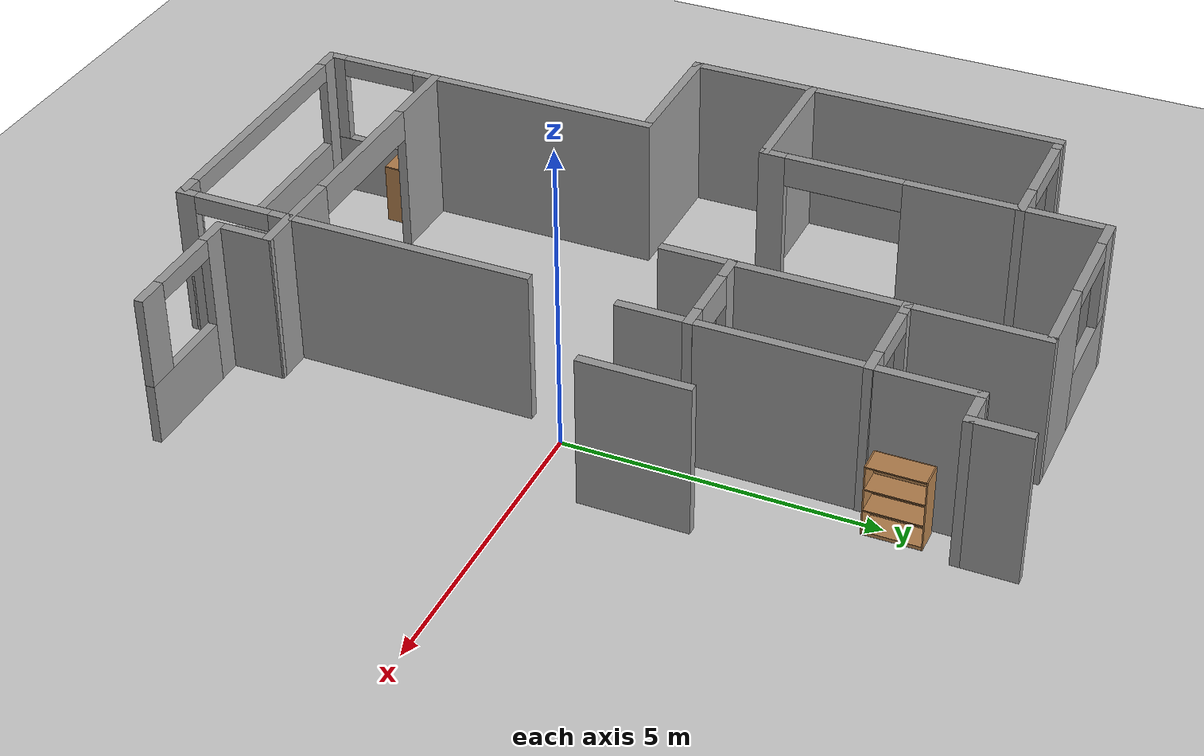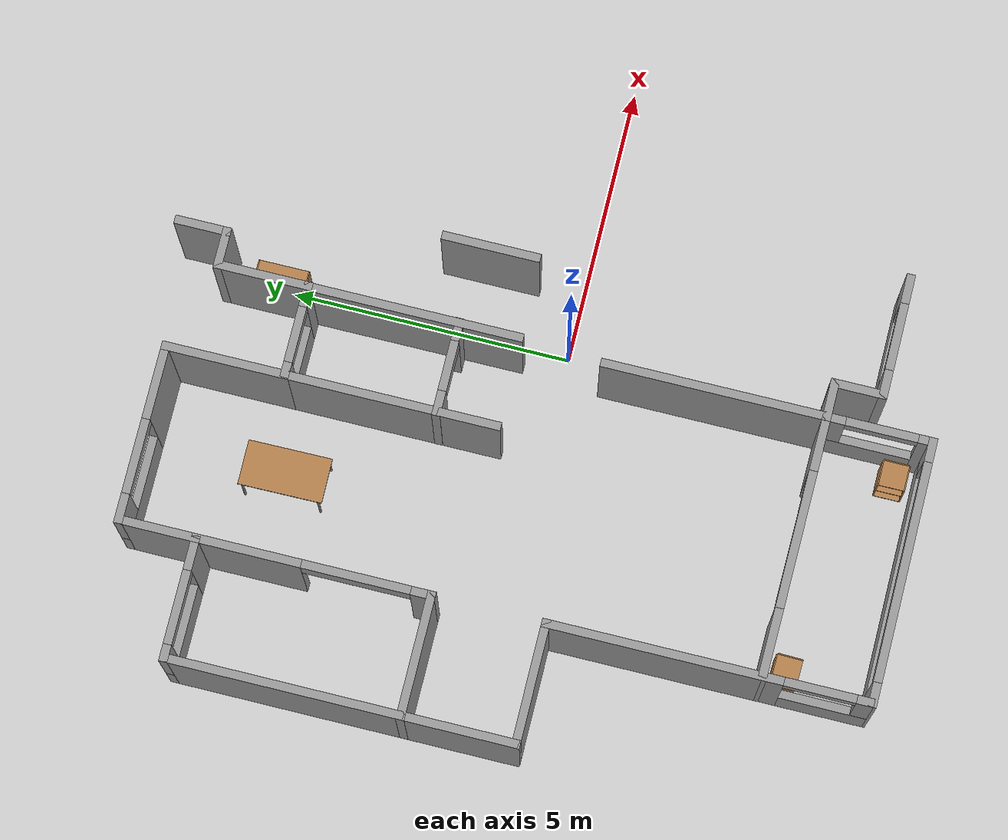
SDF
<sdf version="1.7">
 <world name="default">
  <model name="ground_plane">
   <static>1</static>
   <link name="link">
    <collision name="collision">
     <geometry><plane><normal>0 0 1</normal><size>100 100</size></plane></geometry>
     <surface>
      <contact><collide_bitmask>65535</collide_bitmask></contact>
      <friction><ode><mu>100</mu><mu2>50</mu2></ode></friction>
     </surface>
    </collision>
    <visual name="visual">
     <cast_shadows>0</cast_shadows>
     <geometry><plane><normal>0 0 1</normal><size>100 100</size></plane></geometry>
     <material>
      <script><uri>file://media/materials/scripts/gazebo.material</uri><name>Gazebo/Grey</name></script>
     </material>
    </visual>
   </link>
  </model>
  <model name="house_0818_yt160_1">
   <pose>0.015299 -0.157746 0 0 -0 0</pose>
   <link name="Wall_0">
    <pose>-2.74999 -6.3 0 0 -0 0</pose>
    <visual name="Wall_0_Visual_0">
     <pose>-2.15818 0 1.25 0 -0 0</pose>
     <geometry><box><size>0.433633 0.15 2.5</size></box></geometry>
     <material>
      <script><uri>file://media/materials/scripts/gazebo.material</uri><name>Gazebo/Grey</name></script>
      <ambient>1 1 1 1</ambient>
     </material>
     <meta><layer>0</layer></meta>
    </visual>
    <collision name="Wall_0_Collision_0">
     <geometry><box><size>0.433633 0.15 2.5</size></box></geometry>
     <pose>-2.15818 0 1.25 0 -0 0</pose>
    </collision>
    <visual name="Wall_0_Visual_1">
     <pose>0.216816 0 0.5 0 -0 0</pose>
     <geometry><box><size>4.31637 0.15 1</size></box></geometry>
     <material>
      <script><uri>file://media/materials/scripts/gazebo.material</uri><name>Gazebo/Grey</name></script>
      <ambient>1 1 1 1</ambient>
     </material>
     <meta><layer>0</layer></meta>
    </visual>
    <collision name="Wall_0_Collision_1">
     <geometry><box><size>4.31637 0.15 1</size></box></geometry>
     <pose>0.216816 0 0.5 0 -0 0</pose>
    </collision>
    <visual name="Wall_0_Visual_2">
     <pose>2.15777 0 1.75 0 -0 0</pose>
     <geometry><box><size>0.434453 0.15 1.5</size></box></geometry>
     <material>
      <script><uri>file://media/materials/scripts/gazebo.material</uri><name>Gazebo/Grey</name></script>
      <ambient>1 1 1 1</ambient>
     </material>
     <meta><layer>0</layer></meta>
    </visual>
    <collision name="Wall_0_Collision_2">
     <geometry><box><size>0.434453 0.15 1.5</size></box></geometry>
     <pose>2.15777 0 1.75 0 -0 0</pose>
    </collision>
    <visual name="Wall_0_Visual_3">
     <pose>-0.00041 0 2.35 0 -0 0</pose>
     <geometry><box><size>3.88191 0.15 0.3</size></box></geometry>
     <material>
      <script><uri>file://media/materials/scripts/gazebo.material</uri><name>Gazebo/Grey</name></script>
      <ambient>1 1 1 1</ambient>
     </material>
     <meta><layer>0</layer></meta>
    </visual>
    <collision name="Wall_0_Collision_3">
     <geometry><box><size>3.88191 0.15 0.3</size></box></geometry>
     <pose>-0.00041 0 2.35 0 -0 0</pose>
    </collision>
   </link>
   <link name="Wall_1">
    <pose>-0.45 -5.3749 0 0 -0 1.57081</pose>
    <visual name="Wall_1_Visual_0">
     <pose>-0.838302 0 1.25 0 -0 0</pose>
     <geometry><box><size>0.323396 0.15 2.5</size></box></geometry>
     <material>
      <script><uri>file://media/materials/scripts/gazebo.material</uri><name>Gazebo/Grey</name></script>
      <ambient>1 1 1 1</ambient>
     </material>
     <meta><layer>0</layer></meta>
    </visual>
    <collision name="Wall_1_Collision_0">
     <geometry><box><size>0.323396 0.15 2.5</size></box></geometry>
     <pose>-0.838302 0 1.25 0 -0 0</pose>
    </collision>
    <visual name="Wall_1_Visual_1">
     <pose>0.161698 0 0.5 0 -0 0</pose>
     <geometry><box><size>1.6766 0.15 1</size></box></geometry>
     <material>
      <script><uri>file://media/materials/scripts/gazebo.material</uri><name>Gazebo/Grey</name></script>
      <ambient>1 1 1 1</ambient>
     </material>
     <meta><layer>0</layer></meta>
    </visual>
    <collision name="Wall_1_Collision_1">
     <geometry><box><size>1.6766 0.15 1</size></box></geometry>
     <pose>0.161698 0 0.5 0 -0 0</pose>
    </collision>
    <visual name="Wall_1_Visual_2">
     <pose>0.796698 0 1.75 0 -0 0</pose>
     <geometry><box><size>0.406604 0.15 1.5</size></box></geometry>
     <material>
      <script><uri>file://media/materials/scripts/gazebo.material</uri><name>Gazebo/Grey</name></script>
      <ambient>1 1 1 1</ambient>
     </material>
     <meta><layer>0</layer></meta>
    </visual>
    <collision name="Wall_1_Collision_2">
     <geometry><box><size>0.406604 0.15 1.5</size></box></geometry>
     <pose>0.796698 0 1.75 0 -0 0</pose>
    </collision>
    <visual name="Wall_1_Visual_3">
     <pose>-0.041604 0 2.35 0 -0 0</pose>
     <geometry><box><size>1.27 0.15 0.3</size></box></geometry>
     <material>
      <script><uri>file://media/materials/scripts/gazebo.material</uri><name>Gazebo/Grey</name></script>
      <ambient>1 1 1 1</ambient>
     </material>
     <meta><layer>0</layer></meta>
    </visual>
    <collision name="Wall_1_Collision_3">
     <geometry><box><size>1.27 0.15 0.3</size></box></geometry>
     <pose>-0.041604 0 2.35 0 -0 0</pose>
    </collision>
   </link>
   <link name="Wall_2">
    <collision name="Wall_2_Collision">
     <geometry><box><size>0.75 0.15 2.5</size></box></geometry>
     <pose>0 0 1.25 0 -0 0</pose>
    </collision>
    <visual name="Wall_2_Visual">
     <pose>0 0 1.25 0 -0 0</pose>
     <geometry><box><size>0.75 0.15 2.5</size></box></geometry>
     <material>
      <script><uri>file://media/materials/scripts/gazebo.material</uri><name>Gazebo/Grey</name></script>
      <ambient>1 1 1 1</ambient>
     </material>
     <meta><layer>0</layer></meta>
    </visual>
    <pose>-0.15 -4.4499 0 0 -0 -0.000342</pose>
   </link>
   <link name="Wall_26">
    <collision name="Wall_26_Collision">
     <geometry><box><size>1 0.15 2.5</size></box></geometry>
     <pose>0 0 1.25 0 -0 0</pose>
    </collision>
    <visual name="Wall_26_Visual">
     <pose>0 0 1.25 0 -0 0</pose>
     <geometry><box><size>1 0.15 2.5</size></box></geometry>
     <material>
      <script><uri>file://media/materials/scripts/gazebo.material</uri><name>Gazebo/Grey</name></script>
      <ambient>1 1 1 1</ambient>
     </material>
     <meta><layer>0</layer></meta>
    </visual>
    <pose>0.250013 6.725 0 0 -0 -1.5708</pose>
   </link>
   <link name="Wall_27">
    <collision name="Wall_27_Collision">
     <geometry><box><size>0.75 0.15 2.5</size></box></geometry>
     <pose>0 0 1.25 0 -0 0</pose>
    </collision>
    <visual name="Wall_27_Visual">
     <pose>0 0 1.25 0 -0 0</pose>
     <geometry><box><size>0.75 0.15 2.5</size></box></geometry>
     <material>
      <script><uri>file://media/materials/scripts/gazebo.material</uri><name>Gazebo/Grey</name></script>
      <ambient>1 1 1 1</ambient>
     </material>
     <meta><layer>0</layer></meta>
    </visual>
    <pose>-0.049987 6.3 0 0 -0 3.14159</pose>
   </link>
   <link name="Wall_28">
    <collision name="Wall_28_Collision">
     <geometry><box><size>1.75 0.15 2.5</size></box></geometry>
     <pose>0 0 1.25 0 -0 0</pose>
    </collision>
    <visual name="Wall_28_Visual">
     <pose>0 0 1.25 0 -0 0</pose>
     <geometry><box><size>1.75 0.15 2.5</size></box></geometry>
     <material>
      <script><uri>file://media/materials/scripts/gazebo.material</uri><name>Gazebo/Grey</name></script>
      <ambient>1 1 1 1</ambient>
     </material>
     <meta><layer>0</layer></meta>
    </visual>
    <pose>-0.349987 5.5 0 0 -0 -1.5708</pose>
   </link>
   <link name="Wall_29">
    <pose>-1.15 4.7001 0 0 -0 3.14146</pose>
    <visual name="Wall_29_Visual_0">
     <pose>-0.650791 0 1.25 0 -0 0</pose>
     <geometry><box><size>0.448418 0.15 2.5</size></box></geometry>
     <material>
      <script><uri>file://media/materials/scripts/gazebo.material</uri><name>Gazebo/Grey</name></script>
      <ambient>1 1 1 1</ambient>
     </material>
     <meta><layer>0</layer></meta>
    </visual>
    <collision name="Wall_29_Collision_0">
     <geometry><box><size>0.448418 0.15 2.5</size></box></geometry>
     <pose>-0.650791 0 1.25 0 -0 0</pose>
    </collision>
    <visual name="Wall_29_Visual_1">
     <pose>0.224209 0 0.5 0 -0 0</pose>
     <geometry><box><size>1.30158 0.15 1</size></box></geometry>
     <material>
      <script><uri>file://media/materials/scripts/gazebo.material</uri><name>Gazebo/Grey</name></script>
      <ambient>1 1 1 1</ambient>
     </material>
     <meta><layer>0</layer></meta>
    </visual>
    <collision name="Wall_29_Collision_1">
     <geometry><box><size>1.30158 0.15 1</size></box></geometry>
     <pose>0.224209 0 0.5 0 -0 0</pose>
    </collision>
    <visual name="Wall_29_Visual_2">
     <pose>0.723209 0 1.75 0 -0 0</pose>
     <geometry><box><size>0.303582 0.15 1.5</size></box></geometry>
     <material>
      <script><uri>file://media/materials/scripts/gazebo.material</uri><name>Gazebo/Grey</name></script>
      <ambient>1 1 1 1</ambient>
     </material>
     <meta><layer>0</layer></meta>
    </visual>
    <collision name="Wall_29_Collision_2">
     <geometry><box><size>0.303582 0.15 1.5</size></box></geometry>
     <pose>0.723209 0 1.75 0 -0 0</pose>
    </collision>
    <visual name="Wall_29_Visual_3">
     <pose>0.072418 0 2.35 0 -0 0</pose>
     <geometry><box><size>0.998 0.15 0.3</size></box></geometry>
     <material>
      <script><uri>file://media/materials/scripts/gazebo.material</uri><name>Gazebo/Grey</name></script>
      <ambient>1 1 1 1</ambient>
     </material>
     <meta><layer>0</layer></meta>
    </visual>
    <collision name="Wall_29_Collision_3">
     <geometry><box><size>0.998 0.15 0.3</size></box></geometry>
     <pose>0.072418 0 2.35 0 -0 0</pose>
    </collision>
   </link>
   <link name="Wall_3">
    <collision name="Wall_3_Collision">
     <geometry><box><size>1 0.15 2.5</size></box></geometry>
     <pose>0 0 1.25 0 -0 0</pose>
    </collision>
    <visual name="Wall_3_Visual">
     <pose>0 0 1.25 0 -0 0</pose>
     <geometry><box><size>1 0.15 2.5</size></box></geometry>
     <material>
      <script><uri>file://media/materials/scripts/gazebo.material</uri><name>Gazebo/Grey</name></script>
      <ambient>1 1 1 1</ambient>
     </material>
     <meta><layer>0</layer></meta>
    </visual>
    <pose>0.150013 -4.875 0 0 -0 -1.5708</pose>
   </link>
   <link name="Wall_30">
    <collision name="Wall_30_Collision">
     <geometry><box><size>2.25 0.15 2.5</size></box></geometry>
     <pose>0 0 1.25 0 -0 0</pose>
    </collision>
    <visual name="Wall_30_Visual">
     <pose>0 0 1.25 0 -0 0</pose>
     <geometry><box><size>2.25 0.15 2.5</size></box></geometry>
     <material>
      <script><uri>file://media/materials/scripts/gazebo.material</uri><name>Gazebo/Grey</name></script>
      <ambient>1 1 1 1</ambient>
     </material>
     <meta><layer>0</layer></meta>
    </visual>
    <pose>-1.95 5.7501 0 0 -0 1.57078</pose>
   </link>
   <link name="Wall_31">
    <pose>-3.49999 6.8 0 0 -0 3.14159</pose>
    <visual name="Wall_31_Visual_0">
     <pose>-0.931268 0 1.25 0 -0 0</pose>
     <geometry><box><size>1.38746 0.15 2.5</size></box></geometry>
     <material>
      <script><uri>file://media/materials/scripts/gazebo.material</uri><name>Gazebo/Grey</name></script>
      <ambient>1 1 1 1</ambient>
     </material>
     <meta><layer>0</layer></meta>
    </visual>
    <collision name="Wall_31_Collision_0">
     <geometry><box><size>1.38746 0.15 2.5</size></box></geometry>
     <pose>-0.931268 0 1.25 0 -0 0</pose>
    </collision>
    <visual name="Wall_31_Visual_1">
     <pose>0.693732 0 0.5 0 -0 0</pose>
     <geometry><box><size>1.86254 0.15 1</size></box></geometry>
     <material>
      <script><uri>file://media/materials/scripts/gazebo.material</uri><name>Gazebo/Grey</name></script>
      <ambient>1 1 1 1</ambient>
     </material>
     <meta><layer>0</layer></meta>
    </visual>
    <collision name="Wall_31_Collision_1">
     <geometry><box><size>1.86254 0.15 1</size></box></geometry>
     <pose>0.693732 0 0.5 0 -0 0</pose>
    </collision>
    <visual name="Wall_31_Visual_2">
     <pose>1.35823 0 1.75 0 -0 0</pose>
     <geometry><box><size>0.533535 0.15 1.5</size></box></geometry>
     <material>
      <script><uri>file://media/materials/scripts/gazebo.material</uri><name>Gazebo/Grey</name></script>
      <ambient>1 1 1 1</ambient>
     </material>
     <meta><layer>0</layer></meta>
    </visual>
    <collision name="Wall_31_Collision_2">
     <geometry><box><size>0.533535 0.15 1.5</size></box></geometry>
     <pose>1.35823 0 1.75 0 -0 0</pose>
    </collision>
    <visual name="Wall_31_Visual_3">
     <pose>0.426965 0 2.35 0 -0 0</pose>
     <geometry><box><size>1.329 0.15 0.3</size></box></geometry>
     <material>
      <script><uri>file://media/materials/scripts/gazebo.material</uri><name>Gazebo/Grey</name></script>
      <ambient>1 1 1 1</ambient>
     </material>
     <meta><layer>0</layer></meta>
    </visual>
    <collision name="Wall_31_Collision_3">
     <geometry><box><size>1.329 0.15 0.3</size></box></geometry>
     <pose>0.426965 0 2.35 0 -0 0</pose>
    </collision>
   </link>
   <link name="Wall_32">
    <collision name="Wall_32_Collision">
     <geometry><box><size>1.5 0.15 2.5</size></box></geometry>
     <pose>0 0 1.25 0 -0 0</pose>
    </collision>
    <visual name="Wall_32_Visual">
     <pose>0 0 1.25 0 -0 0</pose>
     <geometry><box><size>1.5 0.15 2.5</size></box></geometry>
     <material>
      <script><uri>file://media/materials/scripts/gazebo.material</uri><name>Gazebo/Grey</name></script>
      <ambient>1 1 1 1</ambient>
     </material>
     <meta><layer>0</layer></meta>
    </visual>
    <pose>-5.05 6.1251 0 0 -0 -1.57082</pose>
   </link>
   <link name="Wall_33">
    <pose>-6.1 5.4501 0 0 -0 -3.14149</pose>
    <visual name="Wall_33_Visual_0">
     <pose>-0.80389 0 1.25 0 -0 0</pose>
     <geometry><box><size>0.642221 0.15 2.5</size></box></geometry>
     <material>
      <script><uri>file://media/materials/scripts/gazebo.material</uri><name>Gazebo/Grey</name></script>
      <ambient>1 1 1 1</ambient>
     </material>
     <meta><layer>0</layer></meta>
    </visual>
    <collision name="Wall_33_Collision_0">
     <geometry><box><size>0.642221 0.15 2.5</size></box></geometry>
     <pose>-0.80389 0 1.25 0 -0 0</pose>
    </collision>
    <visual name="Wall_33_Visual_1">
     <pose>0.32111 0 0.5 0 -0 0</pose>
     <geometry><box><size>1.60778 0.15 1</size></box></geometry>
     <material>
      <script><uri>file://media/materials/scripts/gazebo.material</uri><name>Gazebo/Grey</name></script>
      <ambient>1 1 1 1</ambient>
     </material>
     <meta><layer>0</layer></meta>
    </visual>
    <collision name="Wall_33_Collision_1">
     <geometry><box><size>1.60778 0.15 1</size></box></geometry>
     <pose>0.32111 0 0.5 0 -0 0</pose>
    </collision>
    <visual name="Wall_33_Visual_2">
     <pose>0.97211 0 1.75 0 -0 0</pose>
     <geometry><box><size>0.305779 0.15 1.5</size></box></geometry>
     <material>
      <script><uri>file://media/materials/scripts/gazebo.material</uri><name>Gazebo/Grey</name></script>
      <ambient>1 1 1 1</ambient>
     </material>
     <meta><layer>0</layer></meta>
    </visual>
    <collision name="Wall_33_Collision_2">
     <geometry><box><size>0.305779 0.15 1.5</size></box></geometry>
     <pose>0.97211 0 1.75 0 -0 0</pose>
    </collision>
    <visual name="Wall_33_Visual_3">
     <pose>0.168221 0 2.35 0 -0 0</pose>
     <geometry><box><size>1.302 0.15 0.3</size></box></geometry>
     <material>
      <script><uri>file://media/materials/scripts/gazebo.material</uri><name>Gazebo/Grey</name></script>
      <ambient>1 1 1 1</ambient>
     </material>
     <meta><layer>0</layer></meta>
    </visual>
    <collision name="Wall_33_Collision_3">
     <geometry><box><size>1.302 0.15 0.3</size></box></geometry>
     <pose>0.168221 0 2.35 0 -0 0</pose>
    </collision>
   </link>
   <link name="Wall_34">
    <collision name="Wall_34_Collision">
     <geometry><box><size>6.25 0.15 2.5</size></box></geometry>
     <pose>0 0 1.25 0 -0 0</pose>
    </collision>
    <visual name="Wall_34_Visual">
     <pose>0 0 1.25 0 -0 0</pose>
     <geometry><box><size>6.25 0.15 2.5</size></box></geometry>
     <material>
      <script><uri>file://media/materials/scripts/gazebo.material</uri><name>Gazebo/Grey</name></script>
      <ambient>1 1 1 1</ambient>
     </material>
     <meta><layer>0</layer></meta>
    </visual>
    <pose>-7.14999 2.4 0 0 -0 -1.5708</pose>
   </link>
   <link name="Wall_35">
    <collision name="Wall_35_Collision">
     <geometry><box><size>2.25 0.15 2.5</size></box></geometry>
     <pose>0 0 1.25 0 -0 0</pose>
    </collision>
    <visual name="Wall_35_Visual">
     <pose>0 0 1.25 0 -0 0</pose>
     <geometry><box><size>2.25 0.15 2.5</size></box></geometry>
     <material>
      <script><uri>file://media/materials/scripts/gazebo.material</uri><name>Gazebo/Grey</name></script>
      <ambient>1 1 1 1</ambient>
     </material>
     <meta><layer>0</layer></meta>
    </visual>
    <pose>-6.09999 -0.65 0 0 -0 0</pose>
   </link>
   <link name="Wall_36">
    <pose>-5.04999 -3.45 0 0 -0 -1.5708</pose>
    <visual name="Wall_36_Visual_0">
     <pose>-0.775854 0 1.25 0 -0 0</pose>
     <geometry><box><size>4.19829 0.15 2.5</size></box></geometry>
     <material>
      <script><uri>file://media/materials/scripts/gazebo.material</uri><name>Gazebo/Grey</name></script>
      <ambient>1 1 1 1</ambient>
     </material>
     <meta><layer>0</layer></meta>
    </visual>
    <collision name="Wall_36_Collision_0">
     <geometry><box><size>4.19829 0.15 2.5</size></box></geometry>
     <pose>-0.775854 0 1.25 0 -0 0</pose>
    </collision>
    <visual name="Wall_36_Visual_1">
     <pose>2.09915 0 0.5 0 -0 0</pose>
     <geometry><box><size>1.55171 0.15 1</size></box></geometry>
     <material>
      <script><uri>file://media/materials/scripts/gazebo.material</uri><name>Gazebo/Grey</name></script>
      <ambient>1 1 1 1</ambient>
     </material>
     <meta><layer>0</layer></meta>
    </visual>
    <collision name="Wall_36_Collision_1">
     <geometry><box><size>1.55171 0.15 1</size></box></geometry>
     <pose>2.09915 0 0.5 0 -0 0</pose>
    </collision>
    <visual name="Wall_36_Visual_2">
     <pose>2.72715 0 1.75 0 -0 0</pose>
     <geometry><box><size>0.295708 0.15 1.5</size></box></geometry>
     <material>
      <script><uri>file://media/materials/scripts/gazebo.material</uri><name>Gazebo/Grey</name></script>
      <ambient>1 1 1 1</ambient>
     </material>
     <meta><layer>0</layer></meta>
    </visual>
    <collision name="Wall_36_Collision_2">
     <geometry><box><size>0.295708 0.15 1.5</size></box></geometry>
     <pose>2.72715 0 1.75 0 -0 0</pose>
    </collision>
    <visual name="Wall_36_Visual_3">
     <pose>1.95129 0 2.35 0 -0 0</pose>
     <geometry><box><size>1.256 0.15 0.3</size></box></geometry>
     <material>
      <script><uri>file://media/materials/scripts/gazebo.material</uri><name>Gazebo/Grey</name></script>
      <ambient>1 1 1 1</ambient>
     </material>
     <meta><layer>0</layer></meta>
    </visual>
    <collision name="Wall_36_Collision_3">
     <geometry><box><size>1.256 0.15 0.3</size></box></geometry>
     <pose>1.95129 0 2.35 0 -0 0</pose>
    </collision>
   </link>
   <link name="Wall_38">
    <pose>-2.75001 -4.4253 0 0 -0 -0.010652</pose>
    <visual name="Wall_38_Visual_0">
     <pose>-1.74086 0 1.25 0 -0 0</pose>
     <geometry><box><size>1.26858 0.15 2.5</size></box></geometry>
     <material>
      <script><uri>file://media/materials/scripts/gazebo.material</uri><name>Gazebo/Grey</name></script>
      <ambient>1 1 1 1</ambient>
     </material>
     <meta><layer>0</layer></meta>
    </visual>
    <collision name="Wall_38_Collision_0">
     <geometry><box><size>1.26858 0.15 2.5</size></box></geometry>
     <pose>-1.74086 0 1.25 0 -0 0</pose>
    </collision>
    <visual name="Wall_38_Visual_1">
     <pose>1.85196 0 1.25 0 -0 0</pose>
     <geometry><box><size>1.04636 0.15 2.5</size></box></geometry>
     <material>
      <script><uri>file://media/materials/scripts/gazebo.material</uri><name>Gazebo/Grey</name></script>
      <ambient>1 1 1 1</ambient>
     </material>
     <meta><layer>0</layer></meta>
    </visual>
    <collision name="Wall_38_Collision_1">
     <geometry><box><size>1.04636 0.15 2.5</size></box></geometry>
     <pose>1.85196 0 1.25 0 -0 0</pose>
    </collision>
    <visual name="Wall_38_Visual_2">
     <pose>0.111105 0 2.25 0 -0 0</pose>
     <geometry><box><size>2.43535 0.15 0.5</size></box></geometry>
     <material>
      <script><uri>file://media/materials/scripts/gazebo.material</uri><name>Gazebo/Grey</name></script>
      <ambient>1 1 1 1</ambient>
     </material>
     <meta><layer>0</layer></meta>
    </visual>
    <collision name="Wall_38_Collision_2">
     <geometry><box><size>2.43535 0.15 0.5</size></box></geometry>
     <pose>0.111105 0 2.25 0 -0 0</pose>
    </collision>
   </link>
   <link name="Wall_40">
    <collision name="Wall_40_Collision">
     <geometry><box><size>4.04023 0.15 2.5</size></box></geometry>
     <pose>0 0 1.25 0 -0 0</pose>
    </collision>
    <visual name="Wall_40_Visual">
     <pose>0 0 1.25 0 -0 0</pose>
     <geometry><box><size>4.04023 0.15 2.5</size></box></geometry>
     <material>
      <script><uri>file://media/materials/scripts/gazebo.material</uri><name>Gazebo/Grey</name></script>
      <ambient>1 1 1 1</ambient>
     </material>
     <meta><layer>0</layer></meta>
    </visual>
    <pose>-0.450014 -2.5048 0 0 -0 1.5708</pose>
   </link>
   <link name="Wall_56">
    <collision name="Wall_56_Collision">
     <geometry><box><size>3.881 0.15 2.5</size></box></geometry>
     <pose>0 0 1.25 0 -0 0</pose>
    </collision>
    <visual name="Wall_56_Visual">
     <pose>0 0 1.25 0 -0 0</pose>
     <geometry><box><size>3.881 0.15 2.5</size></box></geometry>
     <material>
      <script><uri>file://media/materials/scripts/gazebo.material</uri><name>Gazebo/Grey</name></script>
      <ambient>1 1 1 1</ambient>
     </material>
     <meta><layer>0</layer></meta>
    </visual>
    <pose>-0.359014 2.83471 0 0 -0 1.5708</pose>
   </link>
   <link name="Wall_6">
    <pose>1.20001 -5.3 0 0 -0 0</pose>
    <visual name="Wall_6_Visual_0">
     <pose>-0.864374 0 1.25 0 -0 0</pose>
     <geometry><box><size>0.521252 0.15 2.5</size></box></geometry>
     <material>
      <script><uri>file://media/materials/scripts/gazebo.material</uri><name>Gazebo/Grey</name></script>
      <ambient>1 1 1 1</ambient>
     </material>
     <meta><layer>0</layer></meta>
    </visual>
    <collision name="Wall_6_Collision_0">
     <geometry><box><size>0.521252 0.15 2.5</size></box></geometry>
     <pose>-0.864374 0 1.25 0 -0 0</pose>
    </collision>
    <visual name="Wall_6_Visual_1">
     <pose>0.260626 0 0.5 0 -0 0</pose>
     <geometry><box><size>1.72875 0.15 1</size></box></geometry>
     <material>
      <script><uri>file://media/materials/scripts/gazebo.material</uri><name>Gazebo/Grey</name></script>
      <ambient>1 1 1 1</ambient>
     </material>
     <meta><layer>0</layer></meta>
    </visual>
    <collision name="Wall_6_Collision_1">
     <geometry><box><size>1.72875 0.15 1</size></box></geometry>
     <pose>0.260626 0 0.5 0 -0 0</pose>
    </collision>
    <visual name="Wall_6_Visual_2">
     <pose>0.860626 0 1.75 0 -0 0</pose>
     <geometry><box><size>0.528748 0.15 1.5</size></box></geometry>
     <material>
      <script><uri>file://media/materials/scripts/gazebo.material</uri><name>Gazebo/Grey</name></script>
      <ambient>1 1 1 1</ambient>
     </material>
     <meta><layer>0</layer></meta>
    </visual>
    <collision name="Wall_6_Collision_2">
     <geometry><box><size>0.528748 0.15 1.5</size></box></geometry>
     <pose>0.860626 0 1.75 0 -0 0</pose>
    </collision>
    <visual name="Wall_6_Visual_3">
     <pose>-0.003748 0 2.35 0 -0 0</pose>
     <geometry><box><size>1.2 0.15 0.3</size></box></geometry>
     <material>
      <script><uri>file://media/materials/scripts/gazebo.material</uri><name>Gazebo/Grey</name></script>
      <ambient>1 1 1 1</ambient>
     </material>
     <meta><layer>0</layer></meta>
    </visual>
    <collision name="Wall_6_Collision_3">
     <geometry><box><size>1.2 0.15 0.3</size></box></geometry>
     <pose>-0.003748 0 2.35 0 -0 0</pose>
    </collision>
   </link>
   <link name="Wall_61">
    <collision name="Wall_61_Collision">
     <geometry><box><size>1.75 0.15 2.5</size></box></geometry>
     <pose>0 0 1.25 0 -0 0</pose>
    </collision>
    <visual name="Wall_61_Visual">
     <pose>0 0 1.25 0 -0 0</pose>
     <geometry><box><size>1.75 0.15 2.5</size></box></geometry>
     <material>
      <script><uri>file://media/materials/scripts/gazebo.material</uri><name>Gazebo/Grey</name></script>
      <ambient>1 1 1 1</ambient>
     </material>
     <meta><layer>0</layer></meta>
    </visual>
    <pose>1.07493 1.81914 0 0 -0 1.57072</pose>
   </link>
   <link name="Wall_64">
    <collision name="Wall_64_Collision">
     <geometry><box><size>2.25 0.15 2.5</size></box></geometry>
     <pose>0 0 1.25 0 -0 0</pose>
    </collision>
    <visual name="Wall_64_Visual">
     <pose>0 0 1.25 0 -0 0</pose>
     <geometry><box><size>2.25 0.15 2.5</size></box></geometry>
     <material>
      <script><uri>file://media/materials/scripts/gazebo.material</uri><name>Gazebo/Grey</name></script>
      <ambient>1 1 1 1</ambient>
     </material>
     <meta><layer>0</layer></meta>
    </visual>
    <pose>-6.10001 1.3412 0 0 -0 0</pose>
   </link>
   <link name="Wall_65">
    <pose>-5.05001 3.3957 0 0 -0 1.5708</pose>
    <visual name="Wall_65_Visual_0">
     <pose>-1.91504 0 1.25 0 -0 0</pose>
     <geometry><box><size>0.429095 0.15 2.5</size></box></geometry>
     <material>
      <script><uri>file://media/materials/scripts/gazebo.material</uri><name>Gazebo/Grey</name></script>
      <ambient>1 1 1 1</ambient>
     </material>
     <meta><layer>0</layer></meta>
    </visual>
    <collision name="Wall_65_Collision_0">
     <geometry><box><size>0.429095 0.15 2.5</size></box></geometry>
     <pose>-1.91504 0 1.25 0 -0 0</pose>
    </collision>
    <visual name="Wall_65_Visual_1">
     <pose>1.16995 0 1.25 0 -0 0</pose>
     <geometry><box><size>1.91927 0.15 2.5</size></box></geometry>
     <material>
      <script><uri>file://media/materials/scripts/gazebo.material</uri><name>Gazebo/Grey</name></script>
      <ambient>1 1 1 1</ambient>
     </material>
     <meta><layer>0</layer></meta>
    </visual>
    <collision name="Wall_65_Collision_1">
     <geometry><box><size>1.91927 0.15 2.5</size></box></geometry>
     <pose>1.16995 0 1.25 0 -0 0</pose>
    </collision>
    <visual name="Wall_65_Visual_2">
     <pose>-0.745089 0 2.25 0 -0 0</pose>
     <geometry><box><size>1.91081 0.15 0.5</size></box></geometry>
     <material>
      <script><uri>file://media/materials/scripts/gazebo.material</uri><name>Gazebo/Grey</name></script>
      <ambient>1 1 1 1</ambient>
     </material>
     <meta><layer>0</layer></meta>
    </visual>
    <collision name="Wall_65_Collision_2">
     <geometry><box><size>1.91081 0.15 0.5</size></box></geometry>
     <pose>-0.745089 0 2.25 0 -0 0</pose>
    </collision>
   </link>
   <link name="Wall_67">
    <collision name="Wall_67_Collision">
     <geometry><box><size>3.881 0.15 2.5</size></box></geometry>
     <pose>0 0 1.25 0 -0 0</pose>
    </collision>
    <visual name="Wall_67_Visual">
     <pose>0 0 1.25 0 -0 0</pose>
     <geometry><box><size>3.881 0.15 2.5</size></box></geometry>
     <material>
      <script><uri>file://media/materials/scripts/gazebo.material</uri><name>Gazebo/Grey</name></script>
      <ambient>1 1 1 1</ambient>
     </material>
     <meta><layer>0</layer></meta>
    </visual>
    <pose>-1.95001 2.83471 0 0 -0 -1.5708</pose>
   </link>
   <link name="Wall_69">
    <pose>-1.15319 2.02474 0 0 -0 3.14159</pose>
    <visual name="Wall_69_Visual_0">
     <pose>-0.674133 0 1.25 0 -0 0</pose>
     <geometry><box><size>0.401733 0.15 2.5</size></box></geometry>
     <material>
      <script><uri>file://media/materials/scripts/gazebo.material</uri><name>Gazebo/Grey</name></script>
      <ambient>1 1 1 1</ambient>
     </material>
     <meta><layer>0</layer></meta>
    </visual>
    <collision name="Wall_69_Collision_0">
     <geometry><box><size>0.401733 0.15 2.5</size></box></geometry>
     <pose>-0.674133 0 1.25 0 -0 0</pose>
    </collision>
    <visual name="Wall_69_Visual_1">
     <pose>0.650867 0 1.25 0 -0 0</pose>
     <geometry><box><size>0.448267 0.15 2.5</size></box></geometry>
     <material>
      <script><uri>file://media/materials/scripts/gazebo.material</uri><name>Gazebo/Grey</name></script>
      <ambient>1 1 1 1</ambient>
     </material>
     <meta><layer>0</layer></meta>
    </visual>
    <collision name="Wall_69_Collision_1">
     <geometry><box><size>0.448267 0.15 2.5</size></box></geometry>
     <pose>0.650867 0 1.25 0 -0 0</pose>
    </collision>
    <visual name="Wall_69_Visual_2">
     <pose>-0.023267 0 2.25 0 -0 0</pose>
     <geometry><box><size>0.9 0.15 0.5</size></box></geometry>
     <material>
      <script><uri>file://media/materials/scripts/gazebo.material</uri><name>Gazebo/Grey</name></script>
      <ambient>1 1 1 1</ambient>
     </material>
     <meta><layer>0</layer></meta>
    </visual>
    <collision name="Wall_69_Collision_2">
     <geometry><box><size>0.9 0.15 0.5</size></box></geometry>
     <pose>-0.023267 0 2.25 0 -0 0</pose>
    </collision>
   </link>
   <static>1</static>
  </model>
  <model name="Table_clone">
   <static>1</static>
   <link name="link">
    <collision name="surface">
     <pose>0 0 1 0 -0 0</pose>
     <geometry><box><size>1.5 0.8 0.03</size></box></geometry>
     <surface><friction><ode><mu>0.6</mu><mu2>0.6</mu2></ode></friction></surface>
    </collision>
    <visual name="visual1">
     <pose>0 0 1 0 -0 0</pose>
     <geometry><box><size>1.5 0.8 0.03</size></box></geometry>
     <material>
      <diffuse>1 1 1 1</diffuse>
      <script><uri>file://media/materials/scripts/gazebo.material</uri><name>Gazebo/Wood</name></script>
      <pbr>
       <metal>
        <albedo_map>https://fuel.ignitionrobotics.org/1.0/openrobotics/models/table/3/files/Table_Diffuse.jpg</albedo_map>
       </metal>
      </pbr>
     </material>
    </visual>
    <collision name="front_left_leg">
     <pose>0.68 0.38 0.5 0 -0 0</pose>
     <geometry><cylinder><radius>0.02</radius><length>1</length></cylinder></geometry>
    </collision>
    <visual name="front_left_leg">
     <pose>0.68 0.38 0.5 0 -0 0</pose>
     <geometry><cylinder><radius>0.02</radius><length>1</length></cylinder></geometry>
     <material>
      <diffuse>0.5 0.5 0.5 1</diffuse>
      <script><uri>file://media/materials/scripts/gazebo.material</uri><name>Gazebo/Grey</name></script>
     </material>
    </visual>
    <collision name="front_right_leg">
     <pose>0.68 -0.38 0.5 0 -0 0</pose>
     <geometry><cylinder><radius>0.02</radius><length>1</length></cylinder></geometry>
    </collision>
    <visual name="front_right_leg">
     <pose>0.68 -0.38 0.5 0 -0 0</pose>
     <geometry><cylinder><radius>0.02</radius><length>1</length></cylinder></geometry>
     <material>
      <diffuse>0.5 0.5 0.5 1</diffuse>
      <script><uri>file://media/materials/scripts/gazebo.material</uri><name>Gazebo/Grey</name></script>
     </material>
    </visual>
    <collision name="back_right_leg">
     <pose>-0.68 -0.38 0.5 0 -0 0</pose>
     <geometry><cylinder><radius>0.02</radius><length>1</length></cylinder></geometry>
    </collision>
    <visual name="back_right_leg">
     <pose>-0.68 -0.38 0.5 0 -0 0</pose>
     <geometry><cylinder><radius>0.02</radius><length>1</length></cylinder></geometry>
     <material>
      <diffuse>0.5 0.5 0.5 1</diffuse>
      <script><uri>file://media/materials/scripts/gazebo.material</uri><name>Gazebo/Grey</name></script>
     </material>
    </visual>
    <collision name="back_left_leg">
     <pose>-0.68 0.38 0.5 0 -0 0</pose>
     <geometry><cylinder><radius>0.02</radius><length>1</length></cylinder></geometry>
    </collision>
    <visual name="back_left_leg">
     <pose>-0.68 0.38 0.5 0 -0 0</pose>
     <geometry><cylinder><radius>0.02</radius><length>1</length></cylinder></geometry>
     <material>
      <diffuse>0.5 0.5 0.5 1</diffuse>
      <script><uri>file://media/materials/scripts/gazebo.material</uri><name>Gazebo/Grey</name></script>
     </material>
    </visual>
   </link>
   <pose>-3.30555 4.26663 0 0 0 -1.562</pose>
  </model>
  <model name="cabinet_clone">
   <static>1</static>
   <link name="cabinet_bottom_plate">
    <inertial>
     <pose>0 0 -1 0 -0 0</pose>
     <inertia><ixx>2.05</ixx><ixy>0</ixy><ixz>0</ixz><iyy>2.05</iyy><iyz>0</iyz><izz>2.05</izz></inertia>
     <mass>25</mass>
    </inertial>
    <collision name="cabinet_bottom_plate_geom">
     <pose>0 0 0.01 0 -0 0</pose>
     <geometry><box><size>0.45 0.45 0.02</size></box></geometry>
    </collision>
    <visual name="cabinet_bottom_plate_geom_visual">
     <pose>0 0 0.01 0 -0 0</pose>
     <geometry><box><size>0.45 0.45 0.02</size></box></geometry>
     <material>
      <script><uri>file://media/materials/scripts/gazebo.material</uri><name>Gazebo/Wood</name></script>
     </material>
    </visual>
    <collision name="cabinet_bottom_plate_geom_cabinet_back_plate">
     <pose>0.235 0 0.51 0 -0 0</pose>
     <geometry><box><size>0.02 0.45 1.02</size></box></geometry>
    </collision>
    <visual name="cabinet_bottom_plate_geom_cabinet_back_plate_visual">
     <pose>0.235 0 0.51 0 -0 0</pose>
     <geometry><box><size>0.02 0.45 1.02</size></box></geometry>
     <material>
      <script><uri>file://media/materials/scripts/gazebo.material</uri><name>Gazebo/Wood</name></script>
     </material>
    </visual>
    <collision name="cabinet_bottom_plate_geom_cabinet_left_plate">
     <pose>0 0.235 0.51 0 -0 0</pose>
     <geometry><box><size>0.45 0.02 1.02</size></box></geometry>
    </collision>
    <visual name="cabinet_bottom_plate_geom_cabinet_left_plate_visual">
     <pose>0 0.235 0.51 0 -0 0</pose>
     <geometry><box><size>0.45 0.02 1.02</size></box></geometry>
     <material>
      <script><uri>file://media/materials/scripts/gazebo.material</uri><name>Gazebo/Wood</name></script>
     </material>
    </visual>
    <collision name="cabinet_bottom_plate_geom_cabinet_middle_plate">
     <pose>0 0 0.51 0 -0 0</pose>
     <geometry><box><size>0.45 0.45 0.02</size></box></geometry>
    </collision>
    <visual name="cabinet_bottom_plate_geom_cabinet_middle_plate_visual">
     <pose>0 0 0.51 0 -0 0</pose>
     <geometry><box><size>0.45 0.45 0.02</size></box></geometry>
     <material>
      <script><uri>file://media/materials/scripts/gazebo.material</uri><name>Gazebo/Wood</name></script>
     </material>
    </visual>
    <collision name="cabinet_bottom_plate_geom_cabinet_right_plate">
     <pose>0 -0.235 0.51 0 -0 0</pose>
     <geometry><box><size>0.45 0.02 1.02</size></box></geometry>
    </collision>
    <visual name="cabinet_bottom_plate_geom_cabinet_right_plate_visual">
     <pose>0 -0.235 0.51 0 -0 0</pose>
     <geometry><box><size>0.45 0.02 1.02</size></box></geometry>
     <material>
      <script><uri>file://media/materials/scripts/gazebo.material</uri><name>Gazebo/Wood</name></script>
     </material>
    </visual>
    <collision name="cabinet_bottom_plate_geom_cabinet_top_plate">
     <pose>0 0 1.01 0 -0 0</pose>
     <geometry><box><size>0.45 0.45 0.02</size></box></geometry>
    </collision>
    <visual name="cabinet_bottom_plate_geom_cabinet_top_plate_visual">
     <pose>0 0 1.01 0 -0 0</pose>
     <geometry><box><size>0.45 0.45 0.02</size></box></geometry>
     <material>
      <script><uri>file://media/materials/scripts/gazebo.material</uri><name>Gazebo/Wood</name></script>
     </material>
    </visual>
   </link>
   <pose>-0.853909 -6.00544 0 0 -0 0</pose>
  </model>
  <model name="cabinet_clone_0">
   <static>1</static>
   <link name="cabinet_bottom_plate">
    <inertial>
     <pose>0 0 -1 0 -0 0</pose>
     <inertia><ixx>2.05</ixx><ixy>0</ixy><ixz>0</ixz><iyy>2.05</iyy><iyz>0</iyz><izz>2.05</izz></inertia>
     <mass>25</mass>
    </inertial>
    <collision name="cabinet_bottom_plate_geom">
     <pose>0 0 0.01 0 -0 0</pose>
     <geometry><box><size>0.45 0.45 0.02</size></box></geometry>
    </collision>
    <visual name="cabinet_bottom_plate_geom_visual">
     <pose>0 0 0.01 0 -0 0</pose>
     <geometry><box><size>0.45 0.45 0.02</size></box></geometry>
     <material>
      <script><uri>file://media/materials/scripts/gazebo.material</uri><name>Gazebo/Wood</name></script>
     </material>
    </visual>
    <collision name="cabinet_bottom_plate_geom_cabinet_back_plate">
     <pose>0.235 0 0.51 0 -0 0</pose>
     <geometry><box><size>0.02 0.45 1.02</size></box></geometry>
    </collision>
    <visual name="cabinet_bottom_plate_geom_cabinet_back_plate_visual">
     <pose>0.235 0 0.51 0 -0 0</pose>
     <geometry><box><size>0.02 0.45 1.02</size></box></geometry>
     <material>
      <script><uri>file://media/materials/scripts/gazebo.material</uri><name>Gazebo/Wood</name></script>
     </material>
    </visual>
    <collision name="cabinet_bottom_plate_geom_cabinet_left_plate">
     <pose>0 0.235 0.51 0 -0 0</pose>
     <geometry><box><size>0.45 0.02 1.02</size></box></geometry>
    </collision>
    <visual name="cabinet_bottom_plate_geom_cabinet_left_plate_visual">
     <pose>0 0.235 0.51 0 -0 0</pose>
     <geometry><box><size>0.45 0.02 1.02</size></box></geometry>
     <material>
      <script><uri>file://media/materials/scripts/gazebo.material</uri><name>Gazebo/Wood</name></script>
     </material>
    </visual>
    <collision name="cabinet_bottom_plate_geom_cabinet_middle_plate">
     <pose>0 0 0.51 0 -0 0</pose>
     <geometry><box><size>0.45 0.45 0.02</size></box></geometry>
    </collision>
    <visual name="cabinet_bottom_plate_geom_cabinet_middle_plate_visual">
     <pose>0 0 0.51 0 -0 0</pose>
     <geometry><box><size>0.45 0.45 0.02</size></box></geometry>
     <material>
      <script><uri>file://media/materials/scripts/gazebo.material</uri><name>Gazebo/Wood</name></script>
     </material>
    </visual>
    <collision name="cabinet_bottom_plate_geom_cabinet_right_plate">
     <pose>0 -0.235 0.51 0 -0 0</pose>
     <geometry><box><size>0.45 0.02 1.02</size></box></geometry>
    </collision>
    <visual name="cabinet_bottom_plate_geom_cabinet_right_plate_visual">
     <pose>0 -0.235 0.51 0 -0 0</pose>
     <geometry><box><size>0.45 0.02 1.02</size></box></geometry>
     <material>
      <script><uri>file://media/materials/scripts/gazebo.material</uri><name>Gazebo/Wood</name></script>
     </material>
    </visual>
    <collision name="cabinet_bottom_plate_geom_cabinet_top_plate">
     <pose>0 0 1.01 0 -0 0</pose>
     <geometry><box><size>0.45 0.45 0.02</size></box></geometry>
    </collision>
    <visual name="cabinet_bottom_plate_geom_cabinet_top_plate_visual">
     <pose>0 0 1.01 0 -0 0</pose>
     <geometry><box><size>0.45 0.45 0.02</size></box></geometry>
     <material>
      <script><uri>file://media/materials/scripts/gazebo.material</uri><name>Gazebo/Wood</name></script>
     </material>
    </visual>
   </link>
   <pose>-4.60534 -4.97565 0 0 -0 1.54376</pose>
  </model>
  <model name="Bookshelf_clone_0_clone">
   <static>1</static>
   <link name="link">
    <inertial><mass>1</mass></inertial>
    <collision name="back">
     <pose>0 0.005 0.6 0 -0 0</pose>
     <geometry><box><size>0.9 0.01 1.2</size></box></geometry>
    </collision>
    <visual name="visual1">
     <pose>0 0.005 0.6 0 -0 0</pose>
     <geometry><box><size>0.9 0.01 1.2</size></box></geometry>
     <material>
      <diffuse>1 1 1 1</diffuse>
      <script><uri>file://media/materials/scripts/gazebo.material</uri><name>Gazebo/Wood</name></script>
      <pbr>
       <metal>
        <albedo_map>https://fuel.ignitionrobotics.org/1.0/openrobotics/models/bookshelf/3/files/bookshelf_diffuse.jpg</albedo_map>
       </metal>
      </pbr>
     </material>
    </visual>
    <collision name="left_side">
     <pose>0.45 -0.195 0.6 0 -0 0</pose>
     <geometry><box><size>0.02 0.4 1.2</size></box></geometry>
    </collision>
    <visual name="visual2">
     <pose>0.45 -0.195 0.6 0 -0 0</pose>
     <geometry><box><size>0.02 0.4 1.2</size></box></geometry>
     <material>
      <diffuse>1 1 1 1</diffuse>
      <script><uri>file://media/materials/scripts/gazebo.material</uri><name>Gazebo/Wood</name></script>
      <pbr>
       <metal>
        <albedo_map>https://fuel.ignitionrobotics.org/1.0/openrobotics/models/bookshelf/3/files/bookshelf_diffuse.jpg</albedo_map>
       </metal>
      </pbr>
     </material>
    </visual>
    <collision name="right_side">
     <pose>-0.45 -0.195 0.6 0 -0 0</pose>
     <geometry><box><size>0.02 0.4 1.2</size></box></geometry>
    </collision>
    <visual name="visual3">
     <pose>-0.45 -0.195 0.6 0 -0 0</pose>
     <geometry><box><size>0.02 0.4 1.2</size></box></geometry>
     <material>
      <diffuse>1 1 1 1</diffuse>
      <script><uri>file://media/materials/scripts/gazebo.material</uri><name>Gazebo/Wood</name></script>
      <pbr>
       <metal>
        <albedo_map>https://fuel.ignitionrobotics.org/1.0/openrobotics/models/bookshelf/3/files/bookshelf_diffuse.jpg</albedo_map>
       </metal>
      </pbr>
     </material>
    </visual>
    <collision name="bottom">
     <pose>0 -0.195 0.03 0 -0 0</pose>
     <geometry><box><size>0.88 0.4 0.06</size></box></geometry>
    </collision>
    <visual name="visual4">
     <pose>0 -0.195 0.03 0 -0 0</pose>
     <geometry><box><size>0.88 0.4 0.06</size></box></geometry>
     <material>
      <diffuse>1 1 1 1</diffuse>
      <script><uri>file://media/materials/scripts/gazebo.material</uri><name>Gazebo/Wood</name></script>
      <pbr>
       <metal>
        <albedo_map>https://fuel.ignitionrobotics.org/1.0/openrobotics/models/bookshelf/3/files/bookshelf_diffuse.jpg</albedo_map>
       </metal>
      </pbr>
     </material>
    </visual>
    <collision name="top">
     <pose>0 -0.195 1.19 0 -0 0</pose>
     <geometry><box><size>0.88 0.4 0.02</size></box></geometry>
    </collision>
    <visual name="visual5">
     <pose>0 -0.195 1.19 0 -0 0</pose>
     <geometry><box><size>0.88 0.4 0.02</size></box></geometry>
     <material>
      <diffuse>1 1 1 1</diffuse>
      <script><uri>file://media/materials/scripts/gazebo.material</uri><name>Gazebo/Wood</name></script>
      <pbr>
       <metal>
        <albedo_map>https://fuel.ignitionrobotics.org/1.0/openrobotics/models/bookshelf/3/files/bookshelf_diffuse.jpg</albedo_map>
       </metal>
      </pbr>
     </material>
    </visual>
    <collision name="low_shelf">
     <pose>0 -0.195 0.43 0 -0 0</pose>
     <geometry><box><size>0.88 0.4 0.02</size></box></geometry>
    </collision>
    <visual name="visual6">
     <pose>0 -0.195 0.43 0 -0 0</pose>
     <geometry><box><size>0.88 0.4 0.02</size></box></geometry>
     <material>
      <diffuse>1 1 1 1</diffuse>
      <script><uri>file://media/materials/scripts/gazebo.material</uri><name>Gazebo/Wood</name></script>
      <pbr>
       <metal>
        <albedo_map>https://fuel.ignitionrobotics.org/1.0/openrobotics/models/bookshelf/3/files/bookshelf_diffuse.jpg</albedo_map>
       </metal>
      </pbr>
     </material>
    </visual>
    <collision name="high_shelf">
     <pose>0 -0.195 0.8 0 -0 0</pose>
     <geometry><box><size>0.88 0.4 0.02</size></box></geometry>
    </collision>
    <visual name="visual7">
     <pose>0 -0.195 0.8 0 -0 0</pose>
     <geometry><box><size>0.88 0.4 0.02</size></box></geometry>
     <material>
      <diffuse>1 1 1 1</diffuse>
      <script><uri>file://media/materials/scripts/gazebo.material</uri><name>Gazebo/Wood</name></script>
      <pbr>
       <metal>
        <albedo_map>https://fuel.ignitionrobotics.org/1.0/openrobotics/models/bookshelf/3/files/bookshelf_diffuse.jpg</albedo_map>
       </metal>
      </pbr>
     </material>
    </visual>
   </link>
   <pose>-0.189461 5.17955 0 0 -0 1.57349</pose>
  </model>
 </world>
</sdf>
